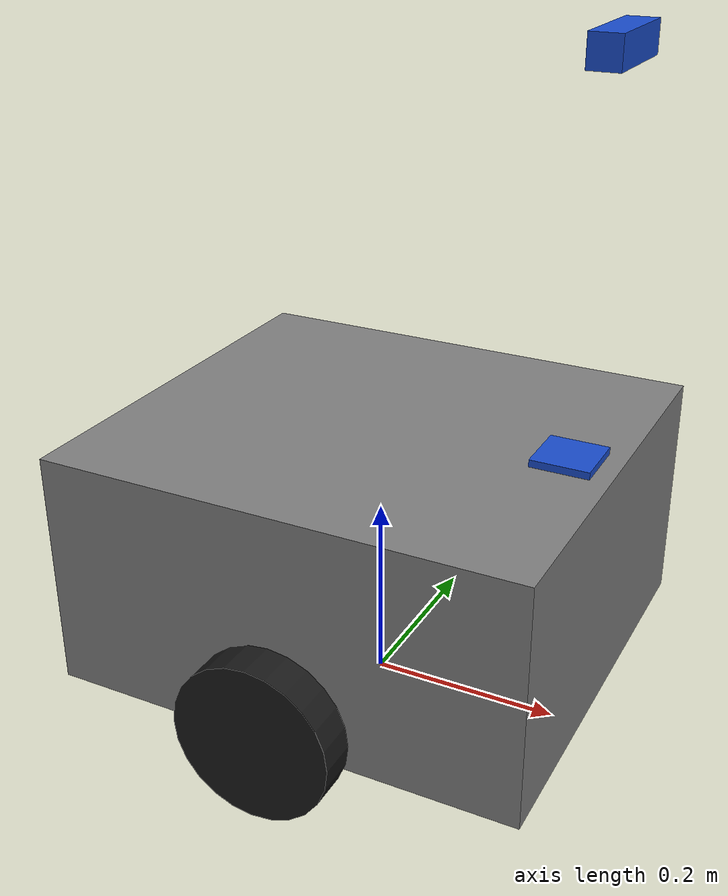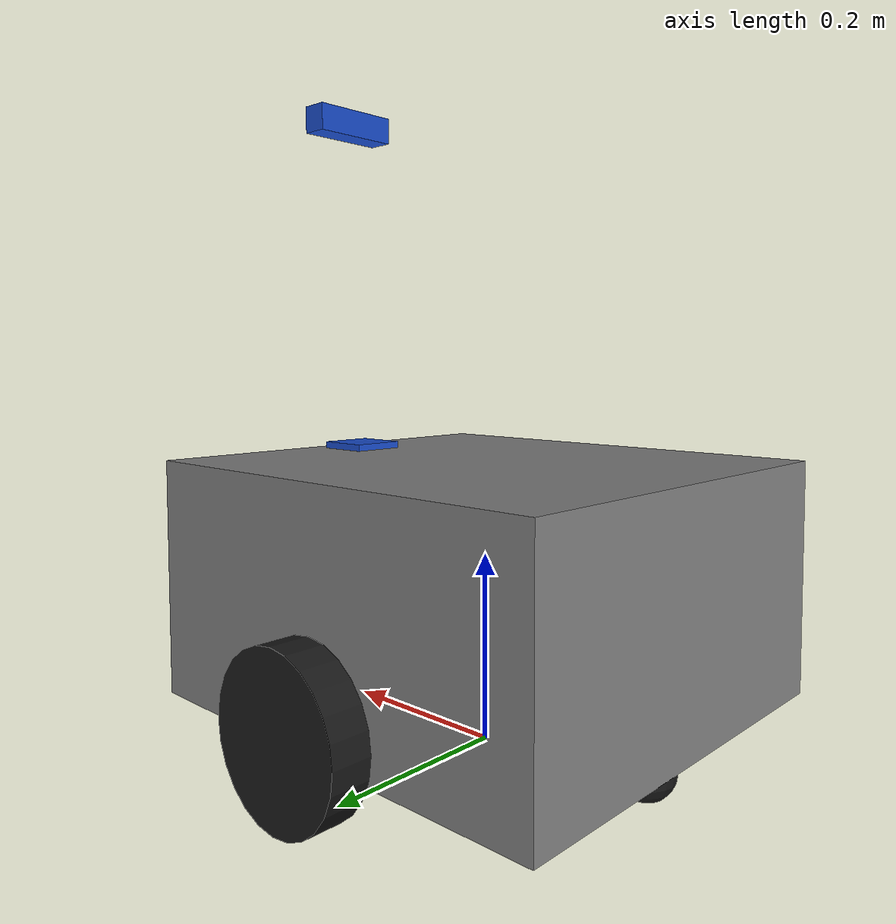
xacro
<?xml version="1.0"?>
<robot name="milo" xmlns:xacro="http://www.ros.org/wiki/xacro">

  <xacro:include filename="$(find milo_description)/urdf/inertias.xacro"/>

  <!-- ===== Parámetros (PROVISORIOS) ===== -->
  <xacro:property name="base_length"   value="0.50"/>
  <xacro:property name="base_width"    value="0.45"/>
  <xacro:property name="base_height"   value="0.25"/>
  <xacro:property name="base_mass"     value="20.0"/>
  <xacro:property name="base_z"        value="0.05"/>   <!-- altura del fondo del chasis sobre el suelo -->

  <xacro:property name="wheel_radius"  value="0.0826"/> <!-- rueda de hoverboard 6.5" (dato real) -->
  <xacro:property name="wheel_width"   value="0.04"/>
  <xacro:property name="wheel_mass"    value="1.0"/>
  <xacro:property name="wheel_y"       value="0.25"/>   <!-- distancia del centro a cada rueda -->
  <xacro:property name="wheel_x"       value="0.0"/>

  <xacro:property name="caster_radius" value="0.03"/>
  <xacro:property name="caster_mass"   value="0.2"/>
  <xacro:property name="caster_x"      value="-0.20"/>

  <xacro:property name="arm_mount_xyz" value="0.15 0 ${base_height}"/>
  <xacro:property name="arm_mount_rpy" value="0 0 0"/>

  <material name="gris"><color rgba="0.5 0.5 0.5 1"/></material>
  <material name="negro"><color rgba="0.1 0.1 0.1 1"/></material>
  <material name="azul"><color rgba="0.1 0.3 0.8 1"/></material>

  <!-- ===== Base ===== -->
  <link name="base_footprint"/>

  <joint name="base_joint" type="fixed">
    <parent link="base_footprint"/>
    <child link="base_link"/>
    <origin xyz="0 0 ${wheel_radius}" rpy="0 0 0"/>
  </joint>

  <!-- base_link: centro del eje de las ruedas -->
  <link name="base_link">
    <visual>
      <origin xyz="0 0 ${base_z - wheel_radius + base_height/2}"/>
      <geometry><box size="${base_length} ${base_width} ${base_height}"/></geometry>
      <material name="gris"/>
    </visual>
    <collision>
      <origin xyz="0 0 ${base_z - wheel_radius + base_height/2}"/>
      <geometry><box size="${base_length} ${base_width} ${base_height}"/></geometry>
    </collision>
    <xacro:box_inertia m="${base_mass}" x="${base_length}" y="${base_width}" z="${base_height}">
      <origin xyz="0 0 ${base_z - wheel_radius + base_height/2}"/>
    </xacro:box_inertia>
  </link>

  <!-- ===== Ruedas ===== -->
  <xacro:macro name="wheel" params="side reflect">
    <link name="${side}_wheel_link">
      <visual>
        <origin rpy="${pi/2} 0 0"/>
        <geometry><cylinder radius="${wheel_radius}" length="${wheel_width}"/></geometry>
        <material name="negro"/>
      </visual>
      <collision>
        <origin rpy="${pi/2} 0 0"/>
        <geometry><cylinder radius="${wheel_radius}" length="${wheel_width}"/></geometry>
      </collision>
      <xacro:cylinder_inertia m="${wheel_mass}" r="${wheel_radius}" h="${wheel_width}">
        <origin rpy="${pi/2} 0 0"/>
      </xacro:cylinder_inertia>
    </link>
    <joint name="${side}_wheel_joint" type="continuous">
      <parent link="base_link"/>
      <child link="${side}_wheel_link"/>
      <origin xyz="${wheel_x} ${reflect*wheel_y} 0"/>
      <axis xyz="0 1 0"/>
    </joint>
  </xacro:macro>

  <xacro:wheel side="left"  reflect="1"/>
  <xacro:wheel side="right" reflect="-1"/>

  <!-- ===== Rueda loca ===== -->
  <link name="caster_link">
    <visual>
      <geometry><sphere radius="${caster_radius}"/></geometry>
      <material name="negro"/>
    </visual>
    <collision>
      <geometry><sphere radius="${caster_radius}"/></geometry>
    </collision>
    <xacro:sphere_inertia m="${caster_mass}" r="${caster_radius}">
      <origin xyz="0 0 0"/>
    </xacro:sphere_inertia>
  </link>
  <joint name="caster_joint" type="fixed">
    <parent link="base_link"/>
    <child link="caster_link"/>
    <origin xyz="${caster_x} 0 ${caster_radius - wheel_radius}"/>
  </joint>

  <!-- ===== Sensores (posiciones PROVISORIAS) ===== -->
  <xacro:macro name="sensor_frame" params="name xyz rpy size">
    <link name="${name}">
      <visual>
        <geometry><box size="${size}"/></geometry>
        <material name="azul"/>
      </visual>
    </link>
    <joint name="${name}_joint" type="fixed">
      <parent link="base_link"/>
      <child link="${name}"/>
      <origin xyz="${xyz}" rpy="${rpy}"/>
    </joint>
  </xacro:macro>

  <xacro:sensor_frame name="laser_link"  xyz="0.20 0 0.20"  rpy="0 0 0" size="0.06 0.06 0.05"/>
  <xacro:sensor_frame name="camera_link" xyz="0.22 0 0.60"  rpy="0 0 0" size="0.03 0.10 0.03"/>
  <xacro:sensor_frame name="imu_link"    xyz="0 0 0.05"     rpy="0 0 0" size="0.02 0.02 0.01"/>

  <!-- ===== Punto de montaje del brazo ===== -->
  <link name="arm_mount_link"/>
  <joint name="arm_mount_joint" type="fixed">
    <parent link="base_link"/>
    <child link="arm_mount_link"/>
    <origin xyz="${arm_mount_xyz}" rpy="${arm_mount_rpy}"/>
  </joint>

</robot>

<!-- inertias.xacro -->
<!-- Macros de inercia para formas simples. Reemplazar por los valores del CAD cuando estén. -->
<robot xmlns:xacro="http://www.ros.org/wiki/xacro">

  <xacro:macro name="box_inertia" params="m x y z *origin">
    <inertial>
      <xacro:insert_block name="origin"/>
      <mass value="${m}"/>
      <inertia ixx="${m*(y*y+z*z)/12}" ixy="0" ixz="0"
               iyy="${m*(x*x+z*z)/12}" iyz="0"
               izz="${m*(x*x+y*y)/12}"/>
    </inertial>
  </xacro:macro>

  <xacro:macro name="cylinder_inertia" params="m r h *origin">
    <inertial>
      <xacro:insert_block name="origin"/>
      <mass value="${m}"/>
      <inertia ixx="${m*(3*r*r+h*h)/12}" ixy="0" ixz="0"
               iyy="${m*(3*r*r+h*h)/12}" iyz="0"
               izz="${m*r*r/2}"/>
    </inertial>
  </xacro:macro>

  <xacro:macro name="sphere_inertia" params="m r *origin">
    <inertial>
      <xacro:insert_block name="origin"/>
      <mass value="${m}"/>
      <inertia ixx="${2*m*r*r/5}" ixy="0" ixz="0"
               iyy="${2*m*r*r/5}" iyz="0"
               izz="${2*m*r*r/5}"/>
    </inertial>
  </xacro:macro>

</robot>
